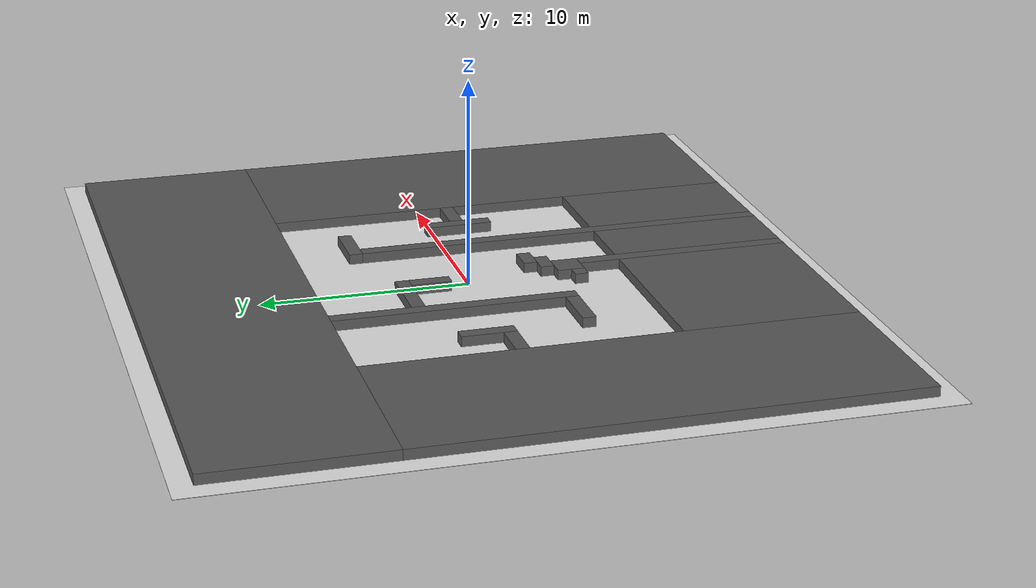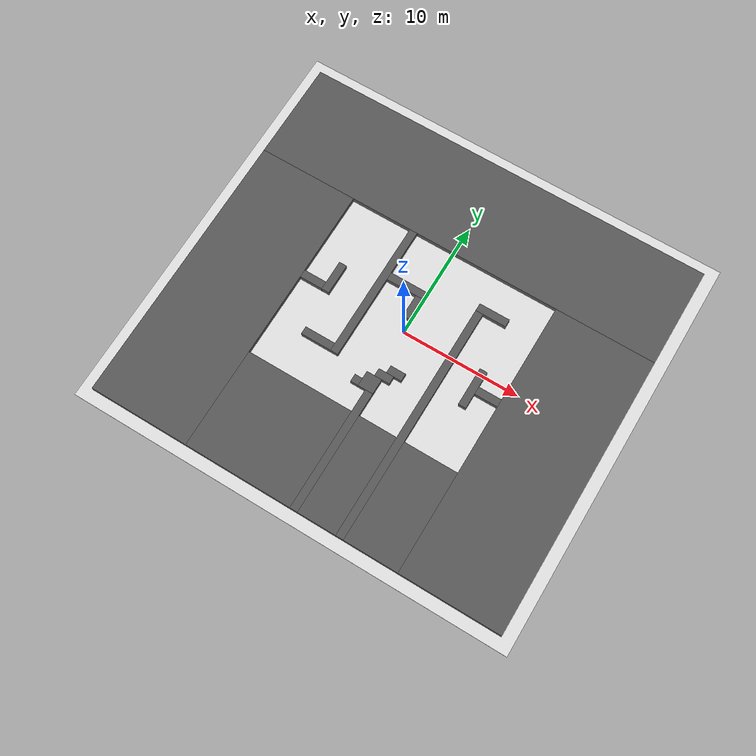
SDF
<?xml version="1.0"?>
<sdf version="1.9">
  <world name="train_map_l4">
    <plugin filename="ignition-gazebo-physics-system" name="ignition::gazebo::systems::Physics"/>
    <plugin filename="ignition-gazebo-user-commands-system" name="ignition::gazebo::systems::UserCommands"/>
    <plugin filename="ignition-gazebo-scene-broadcaster-system" name="ignition::gazebo::systems::SceneBroadcaster"/>
    <plugin filename="ignition-gazebo-sensors-system" name="ignition::gazebo::systems::Sensors">
      <render_engine>ogre2</render_engine>
    </plugin>
    <light name="sun" type="directional">
      <cast_shadows>true</cast_shadows>
      <pose>0 0 10 0 0 0</pose>
      <diffuse>0.8 0.8 0.8 1</diffuse>
      <specular>0.2 0.2 0.2 1</specular>
      <direction>-0.5 0.1 -0.9</direction>
    </light>
    <model name="ground_plane">
      <static>true</static>
      <link name="link">
        <collision name="collision">
          <geometry>
            <box><size>37.100000 33.850000 0.02</size></box>
          </geometry>
        </collision>
        <visual name="visual">
          <geometry>
            <box><size>37.100000 33.850000 0.02</size></box>
          </geometry>
          <material><ambient>0.9 0.9 0.9 1</ambient><diffuse>0.9 0.9 0.9 1</diffuse></material>
        </visual>
      </link>
    </model>
    <model name="rl_explore_obstacles">
      <static>true</static>
      <link name="wall_0000">
        <pose>0.000000 11.700000 0.250000 0 0 0</pose>
        <collision name="collision">
          <geometry>
            <box><size>35.100000 8.450000 0.500000</size></box>
          </geometry>
        </collision>
        <visual name="visual">
          <geometry>
            <box><size>35.100000 8.450000 0.500000</size></box>
          </geometry>
          <material><ambient>0.25 0.25 0.25 1</ambient><diffuse>0.35 0.35 0.35 1</diffuse></material>
        </visual>
      </link>
      <link name="wall_0001">
        <pose>-13.325000 -4.225000 0.250000 0 0 0</pose>
        <collision name="collision">
          <geometry>
            <box><size>8.450000 23.400000 0.500000</size></box>
          </geometry>
        </collision>
        <visual name="visual">
          <geometry>
            <box><size>8.450000 23.400000 0.500000</size></box>
          </geometry>
          <material><ambient>0.25 0.25 0.25 1</ambient><diffuse>0.35 0.35 0.35 1</diffuse></material>
        </visual>
      </link>
      <link name="wall_0002">
        <pose>-3.575000 1.625000 0.250000 0 0 0</pose>
        <collision name="collision">
          <geometry>
            <box><size>0.650000 11.700000 0.500000</size></box>
          </geometry>
        </collision>
        <visual name="visual">
          <geometry>
            <box><size>0.650000 11.700000 0.500000</size></box>
          </geometry>
          <material><ambient>0.25 0.25 0.25 1</ambient><diffuse>0.35 0.35 0.35 1</diffuse></material>
        </visual>
      </link>
      <link name="wall_0003">
        <pose>13.325000 -4.225000 0.250000 0 0 0</pose>
        <collision name="collision">
          <geometry>
            <box><size>8.450000 23.400000 0.500000</size></box>
          </geometry>
        </collision>
        <visual name="visual">
          <geometry>
            <box><size>8.450000 23.400000 0.500000</size></box>
          </geometry>
          <material><ambient>0.25 0.25 0.25 1</ambient><diffuse>0.35 0.35 0.35 1</diffuse></material>
        </visual>
      </link>
      <link name="wall_0004">
        <pose>5.200000 4.550000 0.250000 0 0 0</pose>
        <collision name="collision">
          <geometry>
            <box><size>2.600000 0.650000 0.500000</size></box>
          </geometry>
        </collision>
        <visual name="visual">
          <geometry>
            <box><size>2.600000 0.650000 0.500000</size></box>
          </geometry>
          <material><ambient>0.25 0.25 0.25 1</ambient><diffuse>0.35 0.35 0.35 1</diffuse></material>
        </visual>
      </link>
      <link name="wall_0005">
        <pose>4.225000 -5.850000 0.250000 0 0 0</pose>
        <collision name="collision">
          <geometry>
            <box><size>0.650000 20.150000 0.500000</size></box>
          </geometry>
        </collision>
        <visual name="visual">
          <geometry>
            <box><size>0.650000 20.150000 0.500000</size></box>
          </geometry>
          <material><ambient>0.25 0.25 0.25 1</ambient><diffuse>0.35 0.35 0.35 1</diffuse></material>
        </visual>
      </link>
      <link name="wall_0006">
        <pose>-1.625000 3.250000 0.250000 0 0 0</pose>
        <collision name="collision">
          <geometry>
            <box><size>3.250000 0.650000 0.500000</size></box>
          </geometry>
        </collision>
        <visual name="visual">
          <geometry>
            <box><size>3.250000 0.650000 0.500000</size></box>
          </geometry>
          <material><ambient>0.25 0.25 0.25 1</ambient><diffuse>0.35 0.35 0.35 1</diffuse></material>
        </visual>
      </link>
      <link name="wall_0007">
        <pose>-0.325000 1.950000 0.250000 0 0 0</pose>
        <collision name="collision">
          <geometry>
            <box><size>0.650000 1.950000 0.500000</size></box>
          </geometry>
        </collision>
        <visual name="visual">
          <geometry>
            <box><size>0.650000 1.950000 0.500000</size></box>
          </geometry>
          <material><ambient>0.25 0.25 0.25 1</ambient><diffuse>0.35 0.35 0.35 1</diffuse></material>
        </visual>
      </link>
      <link name="wall_0008">
        <pose>-6.825000 0.975000 0.250000 0 0 0</pose>
        <collision name="collision">
          <geometry>
            <box><size>0.650000 2.600000 0.500000</size></box>
          </geometry>
        </collision>
        <visual name="visual">
          <geometry>
            <box><size>0.650000 2.600000 0.500000</size></box>
          </geometry>
          <material><ambient>0.25 0.25 0.25 1</ambient><diffuse>0.35 0.35 0.35 1</diffuse></material>
        </visual>
      </link>
      <link name="wall_0009">
        <pose>-8.125000 0.000000 0.250000 0 0 0</pose>
        <collision name="collision">
          <geometry>
            <box><size>1.950000 0.650000 0.500000</size></box>
          </geometry>
        </collision>
        <visual name="visual">
          <geometry>
            <box><size>1.950000 0.650000 0.500000</size></box>
          </geometry>
          <material><ambient>0.25 0.25 0.25 1</ambient><diffuse>0.35 0.35 0.35 1</diffuse></material>
        </visual>
      </link>
      <link name="wall_0010">
        <pose>6.825000 -1.300000 0.250000 0 0 0</pose>
        <collision name="collision">
          <geometry>
            <box><size>0.650000 3.250000 0.500000</size></box>
          </geometry>
        </collision>
        <visual name="visual">
          <geometry>
            <box><size>0.650000 3.250000 0.500000</size></box>
          </geometry>
          <material><ambient>0.25 0.25 0.25 1</ambient><diffuse>0.35 0.35 0.35 1</diffuse></material>
        </visual>
      </link>
      <link name="wall_0011">
        <pose>8.125000 -1.300000 0.250000 0 0 0</pose>
        <collision name="collision">
          <geometry>
            <box><size>1.950000 0.650000 0.500000</size></box>
          </geometry>
        </collision>
        <visual name="visual">
          <geometry>
            <box><size>1.950000 0.650000 0.500000</size></box>
          </geometry>
          <material><ambient>0.25 0.25 0.25 1</ambient><diffuse>0.35 0.35 0.35 1</diffuse></material>
        </visual>
      </link>
      <link name="wall_0012">
        <pose>1.300000 -3.250000 0.250000 0 0 0</pose>
        <collision name="collision">
          <geometry>
            <box><size>1.300000 0.650000 0.500000</size></box>
          </geometry>
        </collision>
        <visual name="visual">
          <geometry>
            <box><size>1.300000 0.650000 0.500000</size></box>
          </geometry>
          <material><ambient>0.25 0.25 0.25 1</ambient><diffuse>0.35 0.35 0.35 1</diffuse></material>
        </visual>
      </link>
      <link name="wall_0013">
        <pose>-5.200000 -3.900000 0.250000 0 0 0</pose>
        <collision name="collision">
          <geometry>
            <box><size>2.600000 0.650000 0.500000</size></box>
          </geometry>
        </collision>
        <visual name="visual">
          <geometry>
            <box><size>2.600000 0.650000 0.500000</size></box>
          </geometry>
          <material><ambient>0.25 0.25 0.25 1</ambient><diffuse>0.35 0.35 0.35 1</diffuse></material>
        </visual>
      </link>
      <link name="wall_0014">
        <pose>0.650000 -3.900000 0.250000 0 0 0</pose>
        <collision name="collision">
          <geometry>
            <box><size>1.300000 0.650000 0.500000</size></box>
          </geometry>
        </collision>
        <visual name="visual">
          <geometry>
            <box><size>1.300000 0.650000 0.500000</size></box>
          </geometry>
          <material><ambient>0.25 0.25 0.25 1</ambient><diffuse>0.35 0.35 0.35 1</diffuse></material>
        </visual>
      </link>
      <link name="wall_0015">
        <pose>0.000000 -4.875000 0.250000 0 0 0</pose>
        <collision name="collision">
          <geometry>
            <box><size>1.300000 1.300000 0.500000</size></box>
          </geometry>
        </collision>
        <visual name="visual">
          <geometry>
            <box><size>1.300000 1.300000 0.500000</size></box>
          </geometry>
          <material><ambient>0.25 0.25 0.25 1</ambient><diffuse>0.35 0.35 0.35 1</diffuse></material>
        </visual>
      </link>
      <link name="wall_0016">
        <pose>-0.975000 -5.200000 0.250000 0 0 0</pose>
        <collision name="collision">
          <geometry>
            <box><size>0.650000 0.650000 0.500000</size></box>
          </geometry>
        </collision>
        <visual name="visual">
          <geometry>
            <box><size>0.650000 0.650000 0.500000</size></box>
          </geometry>
          <material><ambient>0.25 0.25 0.25 1</ambient><diffuse>0.35 0.35 0.35 1</diffuse></material>
        </visual>
      </link>
      <link name="wall_0017">
        <pose>0.325000 -10.725000 0.250000 0 0 0</pose>
        <collision name="collision">
          <geometry>
            <box><size>0.650000 10.400000 0.500000</size></box>
          </geometry>
        </collision>
        <visual name="visual">
          <geometry>
            <box><size>0.650000 10.400000 0.500000</size></box>
          </geometry>
          <material><ambient>0.25 0.25 0.25 1</ambient><diffuse>0.35 0.35 0.35 1</diffuse></material>
        </visual>
      </link>
      <link name="wall_0018">
        <pose>-4.550000 -11.700000 0.250000 0 0 0</pose>
        <collision name="collision">
          <geometry>
            <box><size>9.100000 8.450000 0.500000</size></box>
          </geometry>
        </collision>
        <visual name="visual">
          <geometry>
            <box><size>9.100000 8.450000 0.500000</size></box>
          </geometry>
          <material><ambient>0.25 0.25 0.25 1</ambient><diffuse>0.35 0.35 0.35 1</diffuse></material>
        </visual>
      </link>
      <link name="wall_0019">
        <pose>2.275000 -11.700000 0.250000 0 0 0</pose>
        <collision name="collision">
          <geometry>
            <box><size>3.250000 8.450000 0.500000</size></box>
          </geometry>
        </collision>
        <visual name="visual">
          <geometry>
            <box><size>3.250000 8.450000 0.500000</size></box>
          </geometry>
          <material><ambient>0.25 0.25 0.25 1</ambient><diffuse>0.35 0.35 0.35 1</diffuse></material>
        </visual>
      </link>
      <link name="wall_0020">
        <pose>6.825000 -11.700000 0.250000 0 0 0</pose>
        <collision name="collision">
          <geometry>
            <box><size>4.550000 8.450000 0.500000</size></box>
          </geometry>
        </collision>
        <visual name="visual">
          <geometry>
            <box><size>4.550000 8.450000 0.500000</size></box>
          </geometry>
          <material><ambient>0.25 0.25 0.25 1</ambient><diffuse>0.35 0.35 0.35 1</diffuse></material>
        </visual>
      </link>
    </model>
  </world>
</sdf>
